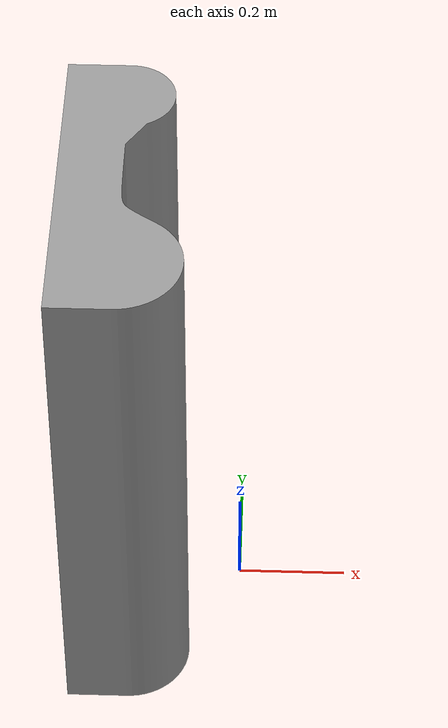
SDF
<?xml version='1.0'?>
<sdf version='1.4'>
  <model name="obstacle">
    <static>true</static>
    <pose>-0.2 -0.05 0 0 0 1.57</pose>
    <link name='link1'>
      <inertial>
        <mass>136.866</mass>
        <inertia>
          <ixx>2.951e6</ixx>
          <ixy>-4.486e4</ixy>
          <ixz>-4.249e-1</ixz>
          <iyy>3.994e6</iyy>
          <iyz>-7.005e-1</iyz>
          <izz>1.243e6</izz>
        </inertia>
      </inertial>

      <collision name='collision'>
        <geometry>
          <mesh>
            <uri>/home/wxm/dev/exotica_ws/src/stack_of_passive_controllers_controller/stack_of_task_space_controllers_kuka_lwr/resources/obstacle.stl</uri>
            <scale>0.002 0.002 0.002</scale>
          </mesh>
        </geometry>
        <surface>
          <friction>
            <ode>
              <mu>0.01</mu>
              <mu2>0.01</mu2>
            </ode>
          </friction>
        </surface>
      </collision>

      <visual name='visual'>
        <geometry>
          <mesh>
            <uri>/home/wxm/dev/exotica_ws/src/stack_of_passive_controllers_controller/stack_of_task_space_controllers_kuka_lwr/resources/obstacle.dae</uri>
          </mesh>
        </geometry>
        <material>
          <script>
            <uri>file://media/materials/scripts/gazebo.material</uri>
            <name>Gazebo/Grey</name>
          </script>
        </material>
      </visual>
    </link>
  </model>
</sdf>
